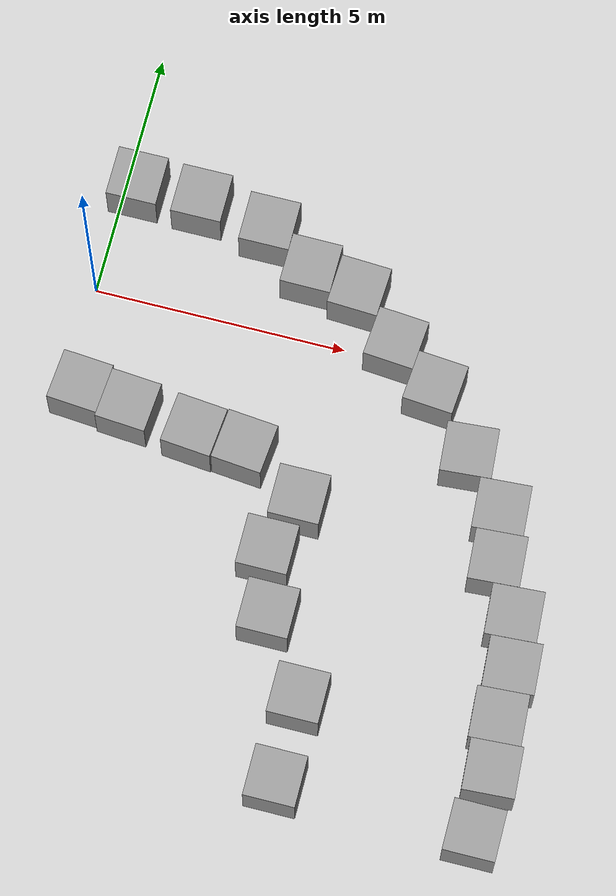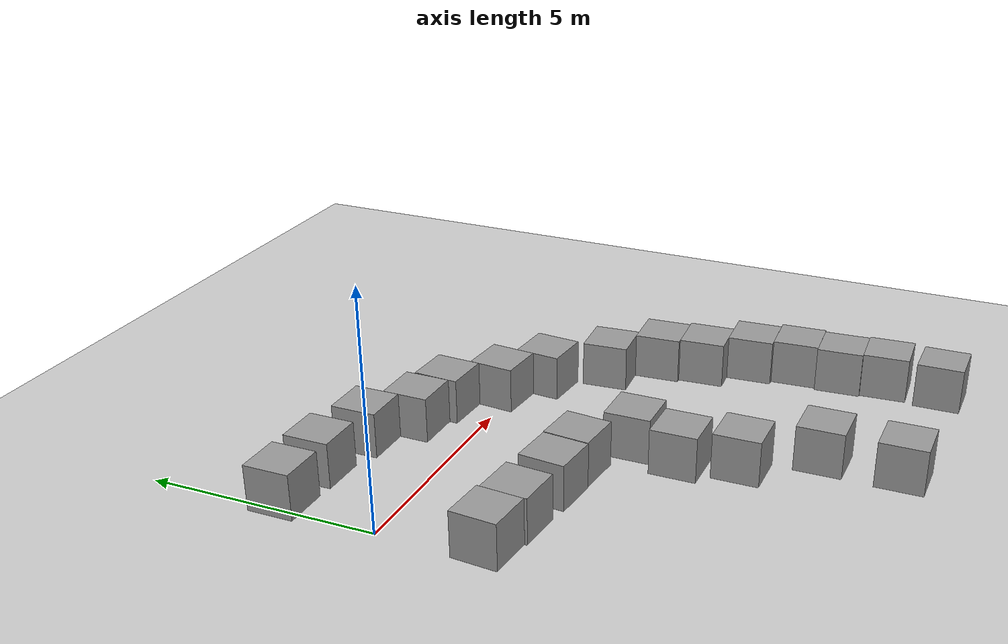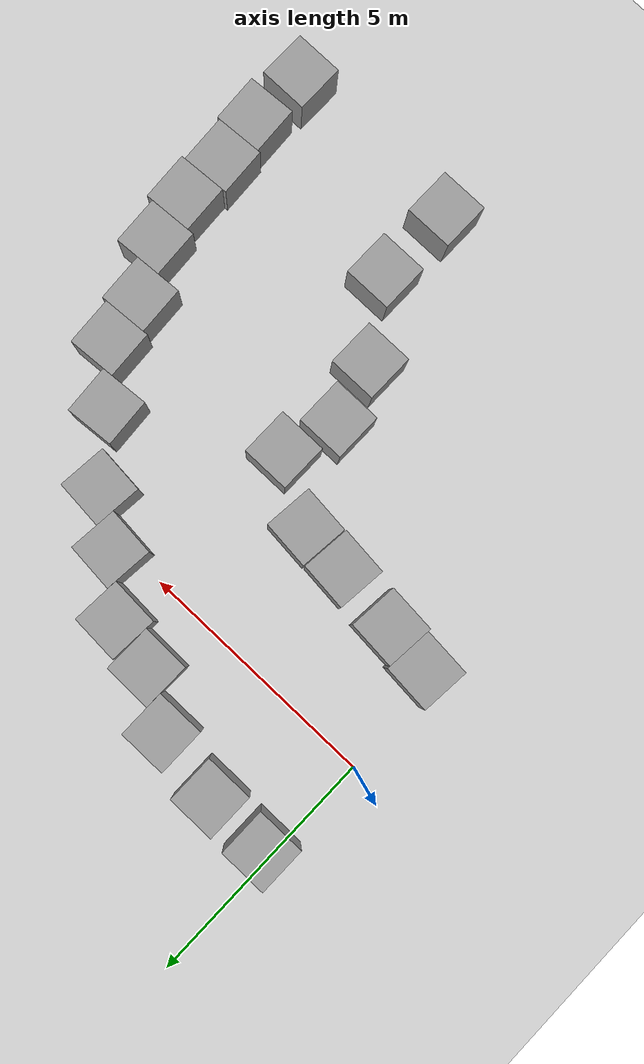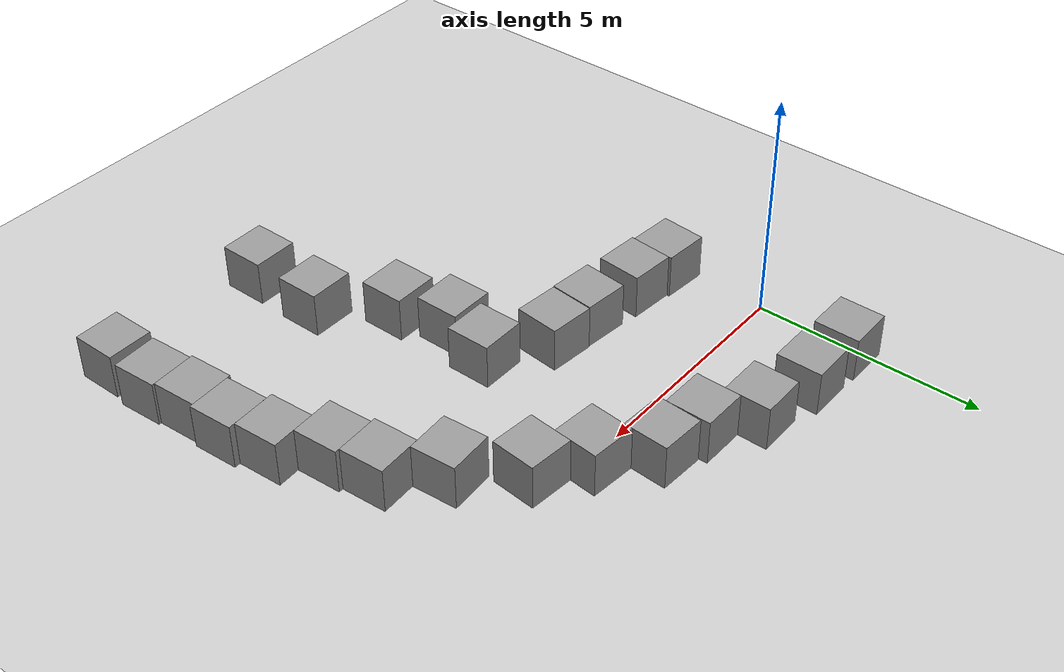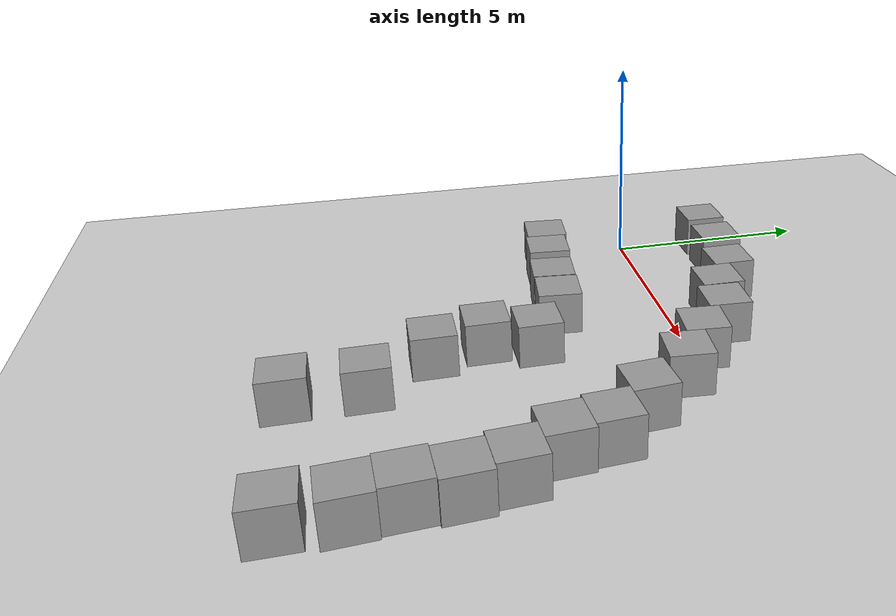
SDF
<sdf version="1.6">
 <world name="default">
  <light name="sun" type="directional">
   <pose>0 0 10 0 -0 0</pose>
   <diffuse>0.8 0.8 0.8 1</diffuse>
   <specular>0.2 0.2 0.2 1</specular>
   <attenuation>
    <range>1000</range>
    <constant>0.9</constant>
    <linear>0.01</linear>
    <quadratic>0.001</quadratic>
   </attenuation>
   <direction>-0.5 0.1 -0.9</direction>
  </light>
  <model name="ground_plane">
   <static>1</static>
   <link name="link">
    <collision name="collision">
     <geometry><plane><normal>0 0 1</normal><size>100 100</size></plane></geometry>
     <surface>
      <contact><collide_bitmask>65535</collide_bitmask></contact>
      <friction><ode><mu>100</mu><mu2>50</mu2></ode></friction>
     </surface>
    </collision>
    <visual name="visual">
     <cast_shadows>0</cast_shadows>
     <geometry><plane><normal>0 0 1</normal><size>100 100</size></plane></geometry>
     <material>
      <script><uri>file://media/materials/scripts/gazebo.material</uri><name>Gazebo/Grey</name></script>
     </material>
    </visual>
   </link>
  </model>
  <gravity>0 0 -9.8</gravity>
  <magnetic_field>6e-06 2.3e-05 -4.2e-05</magnetic_field>
  <atmosphere type="adiabatic"/>
  <physics name="default_physics" default="0" type="ode">
   <max_step_size>0.001</max_step_size>
   <real_time_factor>1</real_time_factor>
   <real_time_update_rate>1000</real_time_update_rate>
  </physics>
  <scene><ambient>0.4 0.4 0.4 1</ambient><background>0.7 0.7 0.7 1</background><shadows>1</shadows></scene>
  <audio><device>default</device></audio>
  <spherical_coordinates>
   <surface_model>EARTH_WGS84</surface_model>
   <latitude_deg>0</latitude_deg>
   <longitude_deg>0</longitude_deg>
   <elevation>0</elevation>
   <heading_deg>0</heading_deg>
  </spherical_coordinates>
  <model name="unit_box">
   <pose>0.328432 -2.1837 0.499995 -0 -1e-05 -0.080328</pose>
   <link name="link">
    <inertial>
     <mass>1</mass>
     <inertia>
      <ixx>0.166667</ixx>
      <ixy>0</ixy>
      <ixz>0</ixz>
      <iyy>0.166667</iyy>
      <iyz>0</iyz>
      <izz>0.166667</izz>
     </inertia>
    </inertial>
    <collision name="collision"><geometry><box><size>1 1 1</size></box></geometry></collision>
    <visual name="visual">
     <geometry><box><size>1 1 1</size></box></geometry>
     <material>
      <script><name>Gazebo/Grey</name><uri>file://media/materials/scripts/gazebo.material</uri></script>
     </material>
    </visual>
   </link>
  </model>
  <model name="unit_box_0">
   <pose>1.32045 -2.32307 0.499995 0 -1e-05 -0.080322</pose>
   <link name="link">
    <inertial>
     <mass>1</mass>
     <inertia>
      <ixx>0.166667</ixx>
      <ixy>0</ixy>
      <ixz>0</ixz>
      <iyy>0.166667</iyy>
      <iyz>0</iyz>
      <izz>0.166667</izz>
     </inertia>
    </inertial>
    <collision name="collision"><geometry><box><size>1 1 1</size></box></geometry></collision>
    <visual name="visual">
     <geometry><box><size>1 1 1</size></box></geometry>
     <material>
      <script><name>Gazebo/Grey</name><uri>file://media/materials/scripts/gazebo.material</uri></script>
     </material>
    </visual>
   </link>
  </model>
  <model name="unit_box_1">
   <pose>2.66341 -2.49051 0.5 0 0 -0.097246</pose>
   <link name="link">
    <inertial>
     <mass>1</mass>
     <inertia>
      <ixx>0.166667</ixx>
      <ixy>0</ixy>
      <ixz>0</ixz>
      <iyy>0.166667</iyy>
      <iyz>0</iyz>
      <izz>0.166667</izz>
     </inertia>
    </inertial>
    <collision name="collision"><geometry><box><size>1 1 1</size></box></geometry></collision>
    <visual name="visual">
     <geometry><box><size>1 1 1</size></box></geometry>
     <material>
      <script><name>Gazebo/Grey</name><uri>file://media/materials/scripts/gazebo.material</uri></script>
     </material>
    </visual>
   </link>
  </model>
  <model name="unit_box_2">
   <pose>3.67882 -2.57234 0.499995 0 1e-05 -0.097237</pose>
   <link name="link">
    <inertial>
     <mass>1</mass>
     <inertia>
      <ixx>0.166667</ixx>
      <ixy>0</ixy>
      <ixz>0</ixz>
      <iyy>0.166667</iyy>
      <iyz>0</iyz>
      <izz>0.166667</izz>
     </inertia>
    </inertial>
    <collision name="collision"><geometry><box><size>1 1 1</size></box></geometry></collision>
    <visual name="visual">
     <geometry><box><size>1 1 1</size></box></geometry>
     <material>
      <script><name>Gazebo/Grey</name><uri>file://media/materials/scripts/gazebo.material</uri></script>
     </material>
    </visual>
   </link>
  </model>
  <model name="unit_box_3">
   <pose>4.61062 -4.42955 0.499995 -1e-05 -0 -0</pose>
   <link name="link">
    <inertial>
     <mass>1</mass>
     <inertia>
      <ixx>0.166667</ixx>
      <ixy>0</ixy>
      <ixz>0</ixz>
      <iyy>0.166667</iyy>
      <iyz>0</iyz>
      <izz>0.166667</izz>
     </inertia>
    </inertial>
    <collision name="collision"><geometry><box><size>1 1 1</size></box></geometry></collision>
    <visual name="visual">
     <geometry><box><size>1 1 1</size></box></geometry>
     <material>
      <script><name>Gazebo/Grey</name><uri>file://media/materials/scripts/gazebo.material</uri></script>
     </material>
    </visual>
   </link>
  </model>
  <model name="unit_box_4">
   <pose>4.93594 -5.62985 0.499995 0 -1e-05 0</pose>
   <link name="link">
    <inertial>
     <mass>1</mass>
     <inertia>
      <ixx>0.166667</ixx>
      <ixy>0</ixy>
      <ixz>0</ixz>
      <iyy>0.166667</iyy>
      <iyz>0</iyz>
      <izz>0.166667</izz>
     </inertia>
    </inertial>
    <collision name="collision"><geometry><box><size>1 1 1</size></box></geometry></collision>
    <visual name="visual">
     <geometry><box><size>1 1 1</size></box></geometry>
     <material>
      <script><name>Gazebo/Grey</name><uri>file://media/materials/scripts/gazebo.material</uri></script>
     </material>
    </visual>
   </link>
  </model>
  <model name="unit_box_5">
   <pose>5.89453 -7.06057 0.499995 -1e-05 -0 -0</pose>
   <link name="link">
    <inertial>
     <mass>1</mass>
     <inertia>
      <ixx>0.166667</ixx>
      <ixy>0</ixy>
      <ixz>0</ixz>
      <iyy>0.166667</iyy>
      <iyz>0</iyz>
      <izz>0.166667</izz>
     </inertia>
    </inertial>
    <collision name="collision"><geometry><box><size>1 1 1</size></box></geometry></collision>
    <visual name="visual">
     <geometry><box><size>1 1 1</size></box></geometry>
     <material>
      <script><name>Gazebo/Grey</name><uri>file://media/materials/scripts/gazebo.material</uri></script>
     </material>
    </visual>
   </link>
  </model>
  <model name="unit_box_6">
   <pose>5.87041 -8.69866 0.499995 0 -1e-05 0</pose>
   <link name="link">
    <inertial>
     <mass>1</mass>
     <inertia>
      <ixx>0.166667</ixx>
      <ixy>0</ixy>
      <ixz>0</ixz>
      <iyy>0.166667</iyy>
      <iyz>0</iyz>
      <izz>0.166667</izz>
     </inertia>
    </inertial>
    <collision name="collision"><geometry><box><size>1 1 1</size></box></geometry></collision>
    <visual name="visual">
     <geometry><box><size>1 1 1</size></box></geometry>
     <material>
      <script><name>Gazebo/Grey</name><uri>file://media/materials/scripts/gazebo.material</uri></script>
     </material>
    </visual>
   </link>
  </model>
  <model name="unit_box_7">
   <pose>4.94808 -3.32591 0.499995 -1e-05 -0 -0</pose>
   <link name="link">
    <inertial>
     <mass>1</mass>
     <inertia>
      <ixx>0.166667</ixx>
      <ixy>0</ixy>
      <ixz>0</ixz>
      <iyy>0.166667</iyy>
      <iyz>0</iyz>
      <izz>0.166667</izz>
     </inertia>
    </inertial>
    <collision name="collision"><geometry><box><size>1 1 1</size></box></geometry></collision>
    <visual name="visual">
     <geometry><box><size>1 1 1</size></box></geometry>
     <material>
      <script><name>Gazebo/Grey</name><uri>file://media/materials/scripts/gazebo.material</uri></script>
     </material>
    </visual>
   </link>
  </model>
  <model name="unit_box_8">
   <pose>0.281719 2.16321 0.499995 0 -1e-05 0</pose>
   <link name="link">
    <inertial>
     <mass>1</mass>
     <inertia>
      <ixx>0.166667</ixx>
      <ixy>0</ixy>
      <ixz>0</ixz>
      <iyy>0.166667</iyy>
      <iyz>0</iyz>
      <izz>0.166667</izz>
     </inertia>
    </inertial>
    <collision name="collision"><geometry><box><size>1 1 1</size></box></geometry></collision>
    <visual name="visual">
     <geometry><box><size>1 1 1</size></box></geometry>
     <material>
      <script><name>Gazebo/Grey</name><uri>file://media/materials/scripts/gazebo.material</uri></script>
     </material>
    </visual>
   </link>
  </model>
  <model name="unit_box_9">
   <pose>1.58986 2.12382 0.499995 -1e-05 -0 -0</pose>
   <link name="link">
    <inertial>
     <mass>1</mass>
     <inertia>
      <ixx>0.166667</ixx>
      <ixy>0</ixy>
      <ixz>0</ixz>
      <iyy>0.166667</iyy>
      <iyz>0</iyz>
      <izz>0.166667</izz>
     </inertia>
    </inertial>
    <collision name="collision"><geometry><box><size>1 1 1</size></box></geometry></collision>
    <visual name="visual">
     <geometry><box><size>1 1 1</size></box></geometry>
     <material>
      <script><name>Gazebo/Grey</name><uri>file://media/materials/scripts/gazebo.material</uri></script>
     </material>
    </visual>
   </link>
  </model>
  <model name="unit_box_10">
   <pose>3.01535 1.89631 0.5 0 -0 0.0006</pose>
   <link name="link">
    <inertial>
     <mass>1</mass>
     <inertia>
      <ixx>0.166667</ixx>
      <ixy>0</ixy>
      <ixz>0</ixz>
      <iyy>0.166667</iyy>
      <iyz>0</iyz>
      <izz>0.166667</izz>
     </inertia>
    </inertial>
    <collision name="collision"><geometry><box><size>1 1 1</size></box></geometry></collision>
    <visual name="visual">
     <geometry><box><size>1 1 1</size></box></geometry>
     <material>
      <script><name>Gazebo/Grey</name><uri>file://media/materials/scripts/gazebo.material</uri></script>
     </material>
    </visual>
   </link>
  </model>
  <model name="unit_box_11">
   <pose>4.01391 1.24558 0.5 0 0 -0.011744</pose>
   <link name="link">
    <inertial>
     <mass>1</mass>
     <inertia>
      <ixx>0.166667</ixx>
      <ixy>0</ixy>
      <ixz>0</ixz>
      <iyy>0.166667</iyy>
      <iyz>0</iyz>
      <izz>0.166667</izz>
     </inertia>
    </inertial>
    <collision name="collision"><geometry><box><size>1 1 1</size></box></geometry></collision>
    <visual name="visual">
     <geometry><box><size>1 1 1</size></box></geometry>
     <material>
      <script><name>Gazebo/Grey</name><uri>file://media/materials/scripts/gazebo.material</uri></script>
     </material>
    </visual>
   </link>
  </model>
  <model name="unit_box_12">
   <pose>5.02453 1.0319 0.499995 -0 -1e-05 -0.05382</pose>
   <link name="link">
    <inertial>
     <mass>1</mass>
     <inertia>
      <ixx>0.166667</ixx>
      <ixy>0</ixy>
      <ixz>0</ixz>
      <iyy>0.166667</iyy>
      <iyz>0</iyz>
      <izz>0.166667</izz>
     </inertia>
    </inertial>
    <collision name="collision"><geometry><box><size>1 1 1</size></box></geometry></collision>
    <visual name="visual">
     <geometry><box><size>1 1 1</size></box></geometry>
     <material>
      <script><name>Gazebo/Grey</name><uri>file://media/materials/scripts/gazebo.material</uri></script>
     </material>
    </visual>
   </link>
  </model>
  <model name="unit_box_13">
   <pose>5.96887 0.168022 0.499995 0 -1e-05 -0.088623</pose>
   <link name="link">
    <inertial>
     <mass>1</mass>
     <inertia>
      <ixx>0.166667</ixx>
      <ixy>0</ixy>
      <ixz>0</ixz>
      <iyy>0.166667</iyy>
      <iyz>0</iyz>
      <izz>0.166667</izz>
     </inertia>
    </inertial>
    <collision name="collision"><geometry><box><size>1 1 1</size></box></geometry></collision>
    <visual name="visual">
     <geometry><box><size>1 1 1</size></box></geometry>
     <material>
      <script><name>Gazebo/Grey</name><uri>file://media/materials/scripts/gazebo.material</uri></script>
     </material>
    </visual>
   </link>
  </model>
  <model name="unit_box_14">
   <pose>6.91204 -0.517192 0.5 0 0 -0.088476</pose>
   <link name="link">
    <inertial>
     <mass>1</mass>
     <inertia>
      <ixx>0.166667</ixx>
      <ixy>0</ixy>
      <ixz>0</ixz>
      <iyy>0.166667</iyy>
      <iyz>0</iyz>
      <izz>0.166667</izz>
     </inertia>
    </inertial>
    <collision name="collision"><geometry><box><size>1 1 1</size></box></geometry></collision>
    <visual name="visual">
     <geometry><box><size>1 1 1</size></box></geometry>
     <material>
      <script><name>Gazebo/Grey</name><uri>file://media/materials/scripts/gazebo.material</uri></script>
     </material>
    </visual>
   </link>
  </model>
  <model name="unit_box_15">
   <pose>7.85869 -1.66875 0.5 0 -0 0.07211</pose>
   <link name="link">
    <inertial>
     <mass>1</mass>
     <inertia>
      <ixx>0.166667</ixx>
      <ixy>0</ixy>
      <ixz>0</ixz>
      <iyy>0.166667</iyy>
      <iyz>0</iyz>
      <izz>0.166667</izz>
     </inertia>
    </inertial>
    <collision name="collision"><geometry><box><size>1 1 1</size></box></geometry></collision>
    <visual name="visual">
     <geometry><box><size>1 1 1</size></box></geometry>
     <material>
      <script><name>Gazebo/Grey</name><uri>file://media/materials/scripts/gazebo.material</uri></script>
     </material>
    </visual>
   </link>
  </model>
  <model name="unit_box_16">
   <pose>8.71448 -2.61497 0.499995 0 -1e-05 0.061246</pose>
   <link name="link">
    <inertial>
     <mass>1</mass>
     <inertia>
      <ixx>0.166667</ixx>
      <ixy>0</ixy>
      <ixz>0</ixz>
      <iyy>0.166667</iyy>
      <iyz>0</iyz>
      <izz>0.166667</izz>
     </inertia>
    </inertial>
    <collision name="collision"><geometry><box><size>1 1 1</size></box></geometry></collision>
    <visual name="visual">
     <geometry><box><size>1 1 1</size></box></geometry>
     <material>
      <script><name>Gazebo/Grey</name><uri>file://media/materials/scripts/gazebo.material</uri></script>
     </material>
    </visual>
   </link>
  </model>
  <model name="unit_box_17">
   <pose>8.8742 -3.60706 0.499995 -1e-05 -0 0.061233</pose>
   <link name="link">
    <inertial>
     <mass>1</mass>
     <inertia>
      <ixx>0.166667</ixx>
      <ixy>0</ixy>
      <ixz>0</ixz>
      <iyy>0.166667</iyy>
      <iyz>0</iyz>
      <izz>0.166667</izz>
     </inertia>
    </inertial>
    <collision name="collision"><geometry><box><size>1 1 1</size></box></geometry></collision>
    <visual name="visual">
     <geometry><box><size>1 1 1</size></box></geometry>
     <material>
      <script><name>Gazebo/Grey</name><uri>file://media/materials/scripts/gazebo.material</uri></script>
     </material>
    </visual>
   </link>
  </model>
  <model name="unit_box_18">
   <pose>9.43004 -4.57583 0.499995 -1e-05 -0 0.059356</pose>
   <link name="link">
    <inertial>
     <mass>1</mass>
     <inertia>
      <ixx>0.166667</ixx>
      <ixy>0</ixy>
      <ixz>0</ixz>
      <iyy>0.166667</iyy>
      <iyz>0</iyz>
      <izz>0.166667</izz>
     </inertia>
    </inertial>
    <collision name="collision"><geometry><box><size>1 1 1</size></box></geometry></collision>
    <visual name="visual">
     <geometry><box><size>1 1 1</size></box></geometry>
     <material>
      <script><name>Gazebo/Grey</name><uri>file://media/materials/scripts/gazebo.material</uri></script>
     </material>
    </visual>
   </link>
  </model>
  <model name="unit_box_19">
   <pose>9.62143 -5.56675 0.5 0 -0 0.058362</pose>
   <link name="link">
    <inertial>
     <mass>1</mass>
     <inertia>
      <ixx>0.166667</ixx>
      <ixy>0</ixy>
      <ixz>0</ixz>
      <iyy>0.166667</iyy>
      <iyz>0</iyz>
      <izz>0.166667</izz>
     </inertia>
    </inertial>
    <collision name="collision"><geometry><box><size>1 1 1</size></box></geometry></collision>
    <visual name="visual">
     <geometry><box><size>1 1 1</size></box></geometry>
     <material>
      <script><name>Gazebo/Grey</name><uri>file://media/materials/scripts/gazebo.material</uri></script>
     </material>
    </visual>
   </link>
  </model>
  <model name="unit_box_20">
   <pose>9.60758 -6.56947 0.499995 0 -1e-05 0.057996</pose>
   <link name="link">
    <inertial>
     <mass>1</mass>
     <inertia>
      <ixx>0.166667</ixx>
      <ixy>0</ixy>
      <ixz>0</ixz>
      <iyy>0.166667</iyy>
      <iyz>0</iyz>
      <izz>0.166667</izz>
     </inertia>
    </inertial>
    <collision name="collision"><geometry><box><size>1 1 1</size></box></geometry></collision>
    <visual name="visual">
     <geometry><box><size>1 1 1</size></box></geometry>
     <material>
      <script><name>Gazebo/Grey</name><uri>file://media/materials/scripts/gazebo.material</uri></script>
     </material>
    </visual>
   </link>
  </model>
  <model name="unit_box_21">
   <pose>9.72153 -7.56456 0.5 0 -0 0.057981</pose>
   <link name="link">
    <inertial>
     <mass>1</mass>
     <inertia>
      <ixx>0.166667</ixx>
      <ixy>0</ixy>
      <ixz>0</ixz>
      <iyy>0.166667</iyy>
      <iyz>0</iyz>
      <izz>0.166667</izz>
     </inertia>
    </inertial>
    <collision name="collision"><geometry><box><size>1 1 1</size></box></geometry></collision>
    <visual name="visual">
     <geometry><box><size>1 1 1</size></box></geometry>
     <material>
      <script><name>Gazebo/Grey</name><uri>file://media/materials/scripts/gazebo.material</uri></script>
     </material>
    </visual>
   </link>
  </model>
  <model name="unit_box_22">
   <pose>9.67253 -8.77289 0.5 0 -0 0</pose>
   <link name="link">
    <inertial>
     <mass>1</mass>
     <inertia>
      <ixx>0.166667</ixx>
      <ixy>0</ixy>
      <ixz>0</ixz>
      <iyy>0.166667</iyy>
      <iyz>0</iyz>
      <izz>0.166667</izz>
     </inertia>
    </inertial>
    <collision name="collision"><geometry><box><size>1 1 1</size></box></geometry></collision>
    <visual name="visual">
     <geometry><box><size>1 1 1</size></box></geometry>
     <material>
      <script><name>Gazebo/Grey</name><uri>file://media/materials/scripts/gazebo.material</uri></script>
     </material>
    </visual>
   </link>
  </model>
 </world>
</sdf>
